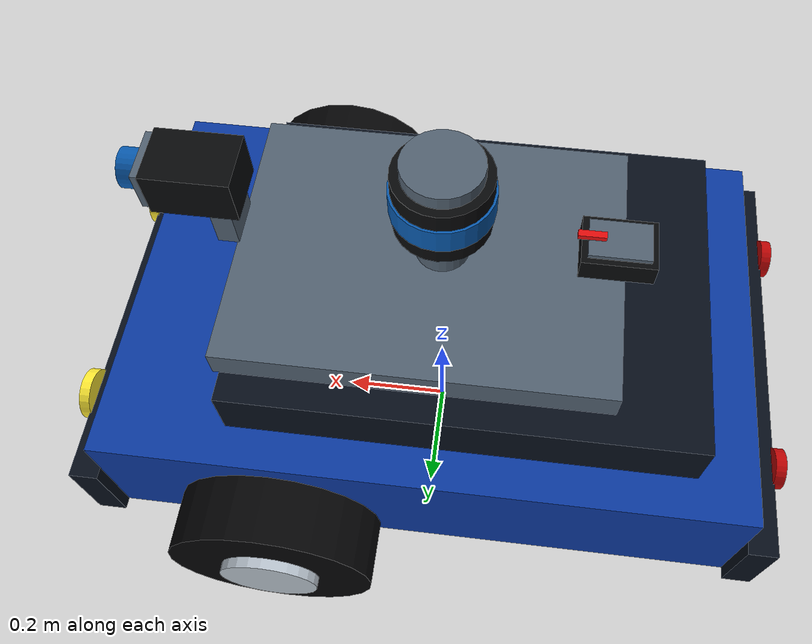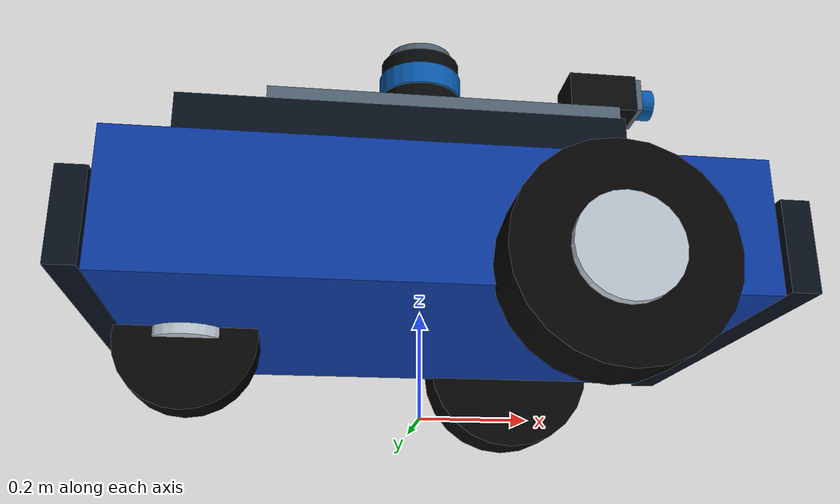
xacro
<?xml version="1.0"?>
<robot xmlns:xacro="http://www.ros.org/wiki/xacro" name="gazebo_diffbot">
  <xacro:include filename="robot_base_macro.xacro"/>
  <xacro:include filename="sensor_macros.xacro"/>

  <xacro:differential_robot_base/>

  <!-- Experiment 4 keeps the Experiment 3 mounting geometry unchanged. -->
  <xacro:install_camera
    parent="base_link"
    frame="camera_link"
    optical_frame="camera_optical_frame"
    xyz="0.38 0 0.68"
    rpy="0 0 0"
    image_topic="/vendor_camera/color"
    info_topic="/vendor_camera/info"
    update_rate="10.0"/>

  <xacro:install_lidar
    parent="base_link"
    frame="mid360_link"
    xyz="0 0 0.68"
    rpy="0 0 0"
    topic="/mid360/points"
    update_rate="10.0"/>

  <xacro:install_imu
    parent="base_link"
    frame="imu_link"
    xyz="-0.28 0 0.59"
    rpy="0 0 0"
    topic="/imu/data"
    update_rate="100.0"/>
</robot>

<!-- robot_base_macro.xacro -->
<robot xmlns:xacro="http://www.ros.org/wiki/xacro">
  <xacro:macro name="fixed_box_visual"
               params="name parent xyz rpy size gazebo_material rgba">
    <link name="${name}">
      <visual>
        <geometry><box size="${size}"/></geometry>
        <material name="${name}_color"><color rgba="${rgba}"/></material>
      </visual>
    </link>
    <joint name="${name}_joint" type="fixed">
      <parent link="${parent}"/>
      <child link="${name}"/>
      <origin xyz="${xyz}" rpy="${rpy}"/>
    </joint>
    <gazebo reference="${name}"><material>${gazebo_material}</material></gazebo>
  </xacro:macro>

  <xacro:macro name="fixed_cylinder_visual"
               params="name parent xyz rpy radius length gazebo_material rgba">
    <link name="${name}">
      <visual>
        <geometry><cylinder radius="${radius}" length="${length}"/></geometry>
        <material name="${name}_color"><color rgba="${rgba}"/></material>
      </visual>
    </link>
    <joint name="${name}_joint" type="fixed">
      <parent link="${parent}"/>
      <child link="${name}"/>
      <origin xyz="${xyz}" rpy="${rpy}"/>
    </joint>
    <gazebo reference="${name}"><material>${gazebo_material}</material></gazebo>
  </xacro:macro>

  <xacro:macro name="differential_wheel" params="name x y radius width side">
    <link name="${name}_wheel_link">
      <visual>
        <origin rpy="1.57079632679 0 0"/>
        <geometry><cylinder radius="${radius}" length="${width}"/></geometry>
        <material name="${name}_tire_color"><color rgba="0.015 0.015 0.02 1"/></material>
      </visual>
      <collision>
        <origin rpy="1.57079632679 0 0"/>
        <geometry><cylinder radius="${radius}" length="${width}"/></geometry>
      </collision>
      <inertial>
        <mass value="2.0"/>
        <inertia ixx="0.018" ixy="0" ixz="0"
                 iyy="0.018" iyz="0" izz="0.018"/>
      </inertial>
    </link>
    <joint name="${name}_wheel_joint" type="continuous">
      <parent link="base_link"/>
      <child link="${name}_wheel_link"/>
      <origin xyz="${x} ${y} ${radius}"/>
      <axis xyz="0 1 0"/>
    </joint>
    <gazebo reference="${name}_wheel_link"><material>Gazebo/Black</material></gazebo>

    <xacro:fixed_cylinder_visual
      name="${name}_wheel_hub" parent="${name}_wheel_link"
      xyz="0 ${side * (width / 2 + 0.009)} 0"
      rpy="1.57079632679 0 0"
      radius="${radius * 0.48}" length="0.018"
      gazebo_material="Gazebo/Grey" rgba="0.72 0.76 0.80 1"/>
  </xacro:macro>

  <xacro:macro name="differential_robot_base" params="">
    <xacro:property name="base_length" value="1.10"/>
    <xacro:property name="base_width" value="0.72"/>
    <xacro:property name="base_height" value="0.24"/>
    <xacro:property name="wheel_radius" value="0.18"/>
    <xacro:property name="wheel_width" value="0.12"/>
    <xacro:property name="wheel_separation" value="0.82"/>

    <link name="base_link">
      <visual>
        <origin xyz="0 0 0.27"/>
        <geometry><box size="${base_length} ${base_width} ${base_height}"/></geometry>
        <material name="base_blue"><color rgba="0.04 0.22 0.62 1"/></material>
      </visual>
      <collision>
        <origin xyz="0 0 0.27"/>
        <geometry><box size="${base_length} ${base_width} ${base_height}"/></geometry>
      </collision>
      <inertial>
        <origin xyz="0 0 0.27"/>
        <mass value="28.0"/>
        <inertia ixx="1.55" ixy="0" ixz="0"
                 iyy="3.05" iyz="0" izz="4.20"/>
      </inertial>
    </link>
    <gazebo reference="base_link"><material>Gazebo/Blue</material></gazebo>

    <xacro:fixed_box_visual
      name="upper_body_link" parent="base_link"
      xyz="-0.06 0 0.43" rpy="0 0 0" size="0.78 0.58 0.12"
      gazebo_material="Gazebo/Black" rgba="0.025 0.055 0.10 1"/>
    <xacro:fixed_box_visual
      name="sensor_deck_link" parent="base_link"
      xyz="0.02 0 0.515" rpy="0 0 0" size="0.64 0.48 0.05"
      gazebo_material="Gazebo/Grey" rgba="0.32 0.38 0.44 1"/>
    <xacro:fixed_box_visual
      name="front_bumper_link" parent="base_link"
      xyz="0.575 0 0.23" rpy="0 0 0" size="0.05 0.76 0.16"
      gazebo_material="Gazebo/Black" rgba="0.025 0.055 0.10 1"/>
    <xacro:fixed_box_visual
      name="rear_bumper_link" parent="base_link"
      xyz="-0.575 0 0.23" rpy="0 0 0" size="0.05 0.76 0.16"
      gazebo_material="Gazebo/Black" rgba="0.025 0.055 0.10 1"/>

    <xacro:fixed_cylinder_visual
      name="left_headlight_link" parent="base_link"
      xyz="0.606 0.22 0.30" rpy="0 1.57079632679 0"
      radius="0.045" length="0.018"
      gazebo_material="Gazebo/Yellow" rgba="1.0 0.92 0.20 1"/>
    <xacro:fixed_cylinder_visual
      name="right_headlight_link" parent="base_link"
      xyz="0.606 -0.22 0.30" rpy="0 1.57079632679 0"
      radius="0.045" length="0.018"
      gazebo_material="Gazebo/Yellow" rgba="1.0 0.92 0.20 1"/>
    <xacro:fixed_cylinder_visual
      name="left_taillight_link" parent="base_link"
      xyz="-0.606 0.22 0.30" rpy="0 1.57079632679 0"
      radius="0.035" length="0.018"
      gazebo_material="Gazebo/Red" rgba="0.75 0.02 0.02 1"/>
    <xacro:fixed_cylinder_visual
      name="right_taillight_link" parent="base_link"
      xyz="-0.606 -0.22 0.30" rpy="0 1.57079632679 0"
      radius="0.035" length="0.018"
      gazebo_material="Gazebo/Red" rgba="0.75 0.02 0.02 1"/>

    <xacro:differential_wheel
      name="left" x="0.25" y="${wheel_separation / 2}"
      radius="${wheel_radius}" width="${wheel_width}" side="1"/>
    <xacro:differential_wheel
      name="right" x="0.25" y="-${wheel_separation / 2}"
      radius="${wheel_radius}" width="${wheel_width}" side="-1"/>

    <link name="caster_link">
      <visual>
        <origin xyz="0 0 0.13" rpy="1.57079632679 0 0"/>
        <geometry><cylinder radius="0.13" length="0.09"/></geometry>
        <material name="caster_black"><color rgba="0.015 0.015 0.02 1"/></material>
      </visual>
      <collision>
        <origin xyz="0 0 0.13"/>
        <geometry><sphere radius="0.13"/></geometry>
      </collision>
      <inertial>
        <origin xyz="0 0 0.13"/>
        <mass value="1.2"/>
        <inertia ixx="0.008" ixy="0" ixz="0"
                 iyy="0.008" iyz="0" izz="0.008"/>
      </inertial>
    </link>
    <joint name="caster_joint" type="fixed">
      <parent link="base_link"/>
      <child link="caster_link"/>
      <origin xyz="-0.43 0 0"/>
    </joint>
    <gazebo reference="caster_link"><material>Gazebo/Black</material></gazebo>
    <xacro:fixed_cylinder_visual
      name="caster_fork_link" parent="caster_link"
      xyz="0 0 0.225" rpy="0 0 0"
      radius="0.075" length="0.19"
      gazebo_material="Gazebo/Grey" rgba="0.72 0.76 0.80 1"/>

    <gazebo>
      <plugin name="diff_drive" filename="libgazebo_ros_diff_drive.so">
        <ros><namespace>/</namespace></ros>
        <update_rate>50</update_rate>
        <left_joint>left_wheel_joint</left_joint>
        <right_joint>right_wheel_joint</right_joint>
        <wheel_separation>${wheel_separation}</wheel_separation>
        <wheel_diameter>${2 * wheel_radius}</wheel_diameter>
        <max_wheel_torque>45</max_wheel_torque>
        <max_wheel_acceleration>6</max_wheel_acceleration>
        <command_topic>cmd_vel</command_topic>
        <odometry_topic>odom</odometry_topic>
        <odometry_frame>odom</odometry_frame>
        <robot_base_frame>base_link</robot_base_frame>
        <publish_odom>true</publish_odom>
        <publish_odom_tf>true</publish_odom_tf>
        <publish_wheel_tf>true</publish_wheel_tf>
        <publish_wheel_joint_state>true</publish_wheel_joint_state>
      </plugin>
    </gazebo>
  </xacro:macro>
</robot>

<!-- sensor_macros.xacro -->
<robot xmlns:xacro="http://www.ros.org/wiki/xacro">
  <xacro:macro name="install_camera"
               params="parent frame optical_frame xyz rpy image_topic info_topic update_rate">
    <link name="${frame}">
      <visual>
        <geometry><box size="0.14 0.10 0.08"/></geometry>
        <material name="camera_black"><color rgba="0.025 0.03 0.035 1"/></material>
      </visual>
      <collision>
        <geometry><box size="0.14 0.10 0.08"/></geometry>
      </collision>
      <inertial>
        <mass value="0.10"/>
        <inertia ixx="0.0001" ixy="0" ixz="0"
                 iyy="0.0001" iyz="0" izz="0.0001"/>
      </inertial>
    </link>
    <joint name="${frame}_joint" type="fixed">
      <parent link="${parent}"/>
      <child link="${frame}"/>
      <origin xyz="${xyz}" rpy="${rpy}"/>
    </joint>
    <gazebo reference="${frame}"><material>Gazebo/Black</material></gazebo>
    <xacro:fixed_box_visual
      name="${frame}_face_link" parent="${frame}"
      xyz="0.076 0 0" rpy="0 0 0" size="0.015 0.09 0.07"
      gazebo_material="Gazebo/Grey" rgba="0.32 0.38 0.44 1"/>
    <xacro:fixed_cylinder_visual
      name="${frame}_lens_link" parent="${frame}"
      xyz="0.095 0 0" rpy="0 1.57079632679 0"
      radius="0.032" length="0.04"
      gazebo_material="Gazebo/Blue" rgba="0.03 0.35 0.68 1"/>
    <xacro:fixed_box_visual
      name="${frame}_bracket_link" parent="${frame}"
      xyz="-0.035 0 -0.075" rpy="0 0 0" size="0.035 0.08 0.08"
      gazebo_material="Gazebo/Grey" rgba="0.32 0.38 0.44 1"/>

    <!-- A dedicated link preserves the lens offset during URDF-to-SDF fixed-joint reduction. -->
    <link name="${frame}_sensor_link"/>
    <joint name="${frame}_sensor_joint" type="fixed">
      <parent link="${frame}"/>
      <child link="${frame}_sensor_link"/>
      <origin xyz="0.13 0 0" rpy="0 0 0"/>
    </joint>

    <link name="${optical_frame}"/>
    <joint name="${optical_frame}_joint" type="fixed">
      <parent link="${frame}_sensor_link"/>
      <child link="${optical_frame}"/>
      <origin xyz="0 0 0" rpy="-1.57079632679 0 -1.57079632679"/>
    </joint>

    <gazebo reference="${frame}_sensor_link">
      <sensor name="camera_sensor" type="camera">
        <always_on>true</always_on>
        <visualize>false</visualize>
        <update_rate>${update_rate}</update_rate>
        <camera name="camera_optical">
          <horizontal_fov>1.0472</horizontal_fov>
          <image>
            <width>320</width>
            <height>240</height>
            <format>R8G8B8</format>
          </image>
          <clip>
            <near>0.05</near>
            <far>20.0</far>
          </clip>
        </camera>
        <plugin name="camera_ros" filename="libgazebo_ros_camera.so">
          <ros>
            <namespace>/</namespace>
            <remapping>camera/image_raw:=${image_topic}</remapping>
            <remapping>camera/camera_info:=${info_topic}</remapping>
          </ros>
          <camera_name>camera</camera_name>
          <frame_name>${optical_frame}</frame_name>
        </plugin>
      </sensor>
    </gazebo>
  </xacro:macro>

  <xacro:macro name="install_lidar"
               params="parent frame xyz rpy topic update_rate">
    <link name="${frame}">
      <visual>
        <geometry><cylinder radius="0.08" length="0.11"/></geometry>
        <material name="lidar_black"><color rgba="0.025 0.03 0.035 1"/></material>
      </visual>
      <collision>
        <geometry><cylinder radius="0.08" length="0.11"/></geometry>
      </collision>
      <inertial>
        <mass value="0.25"/>
        <inertia ixx="0.0001" ixy="0" ixz="0"
                 iyy="0.0001" iyz="0" izz="0.0001"/>
      </inertial>
    </link>
    <joint name="${frame}_joint" type="fixed">
      <parent link="${parent}"/>
      <child link="${frame}"/>
      <origin xyz="${xyz}" rpy="${rpy}"/>
    </joint>
    <gazebo reference="${frame}"><material>Gazebo/Black</material></gazebo>
    <xacro:fixed_cylinder_visual
      name="${frame}_scan_band_link" parent="${frame}"
      xyz="0 0 0" rpy="0 0 0" radius="0.084" length="0.045"
      gazebo_material="Gazebo/Blue" rgba="0.03 0.35 0.68 1"/>
    <xacro:fixed_cylinder_visual
      name="${frame}_cap_link" parent="${frame}"
      xyz="0 0 0.065" rpy="0 0 0" radius="0.065" length="0.025"
      gazebo_material="Gazebo/Grey" rgba="0.32 0.38 0.44 1"/>
    <xacro:fixed_cylinder_visual
      name="${frame}_mount_link" parent="${frame}"
      xyz="0 0 -0.095" rpy="0 0 0" radius="0.045" length="0.08"
      gazebo_material="Gazebo/Grey" rgba="0.32 0.38 0.44 1"/>

    <gazebo reference="${frame}">
      <sensor name="mid360_lidar" type="ray">
        <always_on>true</always_on>
        <visualize>false</visualize>
        <update_rate>${update_rate}</update_rate>
        <ray>
          <scan>
            <horizontal>
              <samples>240</samples>
              <resolution>1.0</resolution>
              <min_angle>-3.14159265359</min_angle>
              <max_angle>3.14159265359</max_angle>
            </horizontal>
            <vertical>
              <samples>12</samples>
              <resolution>1.0</resolution>
              <min_angle>-0.5235987756</min_angle>
              <max_angle>0.2617993878</max_angle>
            </vertical>
          </scan>
          <range>
            <min>0.10</min>
            <max>70.0</max>
            <resolution>0.01</resolution>
          </range>
        </ray>
        <plugin name="mid360_pointcloud" filename="libgazebo_ros_ray_sensor.so">
          <ros>
            <namespace>/</namespace>
            <remapping>~/out:=${topic}</remapping>
          </ros>
          <output_type>sensor_msgs/PointCloud2</output_type>
          <frame_name>${frame}</frame_name>
        </plugin>
      </sensor>
    </gazebo>
  </xacro:macro>

  <xacro:macro name="install_imu"
               params="parent frame xyz rpy topic update_rate">
    <link name="${frame}">
      <visual>
        <geometry><box size="0.12 0.09 0.04"/></geometry>
        <material name="imu_black"><color rgba="0.025 0.03 0.035 1"/></material>
      </visual>
      <collision>
        <geometry><box size="0.12 0.09 0.04"/></geometry>
      </collision>
      <inertial>
        <mass value="0.10"/>
        <inertia ixx="0.0001" ixy="0" ixz="0"
                 iyy="0.0001" iyz="0" izz="0.0001"/>
      </inertial>
    </link>
    <joint name="${frame}_joint" type="fixed">
      <parent link="${parent}"/>
      <child link="${frame}"/>
      <origin xyz="${xyz}" rpy="${rpy}"/>
    </joint>
    <gazebo reference="${frame}"><material>Gazebo/Black</material></gazebo>
    <xacro:fixed_box_visual
      name="${frame}_top_link" parent="${frame}"
      xyz="0 0 0.023" rpy="0 0 0" size="0.10 0.07 0.008"
      gazebo_material="Gazebo/Grey" rgba="0.32 0.38 0.44 1"/>
    <xacro:fixed_box_visual
      name="${frame}_forward_marker_link" parent="${frame}"
      xyz="0.045 0 0.031" rpy="0 0 0" size="0.045 0.012 0.009"
      gazebo_material="Gazebo/Red" rgba="0.90 0.05 0.05 1"/>

    <gazebo reference="${frame}">
      <sensor name="imu_sensor" type="imu">
        <always_on>true</always_on>
        <visualize>false</visualize>
        <update_rate>${update_rate}</update_rate>
        <imu>
          <angular_velocity>
            <x><noise type="gaussian"><mean>0.0</mean><stddev>0.001</stddev></noise></x>
            <y><noise type="gaussian"><mean>0.0</mean><stddev>0.001</stddev></noise></y>
            <z><noise type="gaussian"><mean>0.0</mean><stddev>0.001</stddev></noise></z>
          </angular_velocity>
          <linear_acceleration>
            <x><noise type="gaussian"><mean>0.0</mean><stddev>0.01</stddev></noise></x>
            <y><noise type="gaussian"><mean>0.0</mean><stddev>0.01</stddev></noise></y>
            <z><noise type="gaussian"><mean>0.0</mean><stddev>0.01</stddev></noise></z>
          </linear_acceleration>
        </imu>
        <plugin name="imu_plugin" filename="libgazebo_ros_imu_sensor.so">
          <ros>
            <namespace>/</namespace>
            <remapping>~/out:=${topic}</remapping>
          </ros>
          <frame_name>${frame}</frame_name>
        </plugin>
      </sensor>
    </gazebo>
  </xacro:macro>
</robot>
